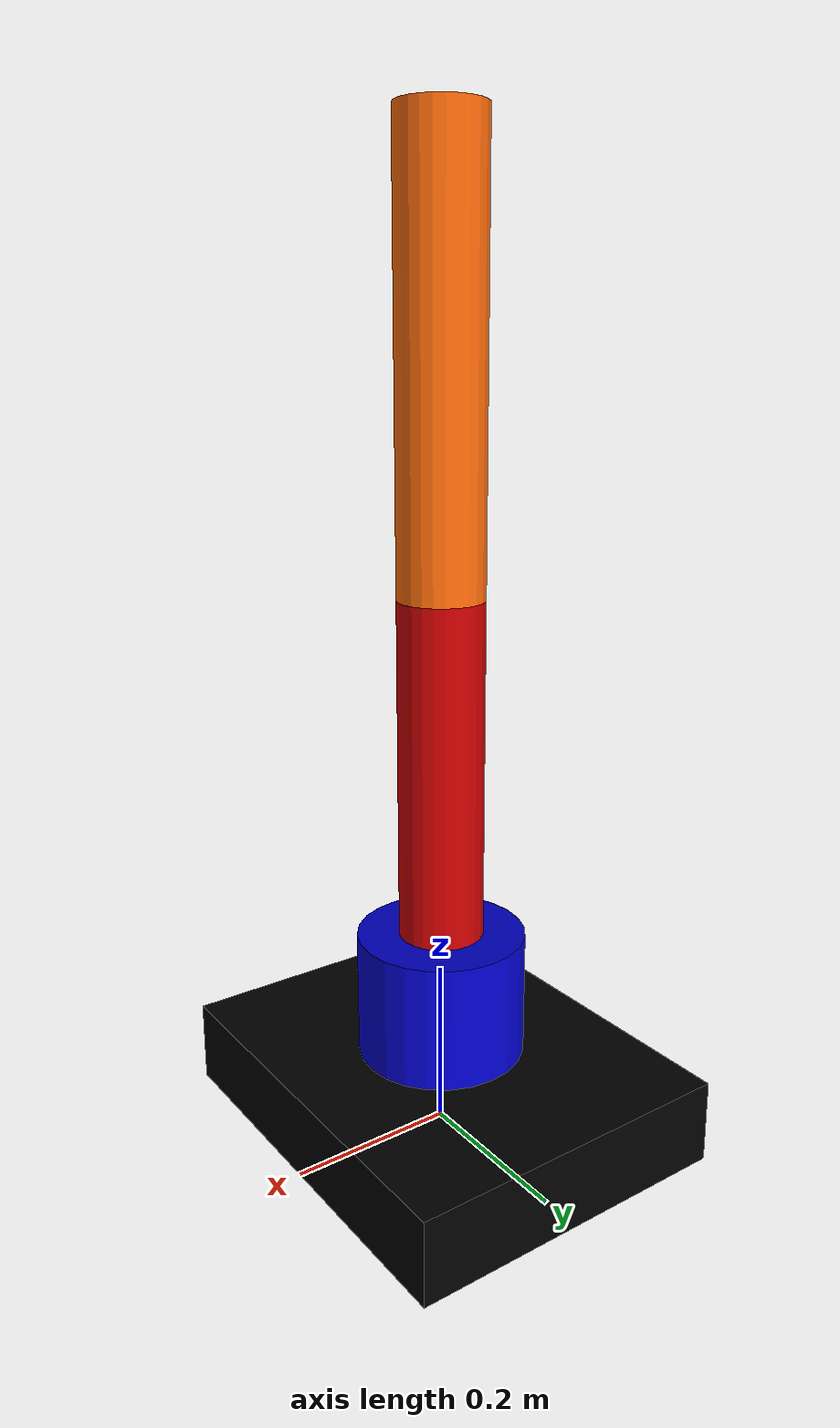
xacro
<?xml version="1.0"?>
<robot name="kai_robot" xmlns:xacro="http://ros.org/wiki/xacro">
  <xacro:property name="pi" value="3.1415" />
  <xacro:property name="base_platform_width" value="0.5" />
  <xacro:property name="base_platform_depth" value="0.4" />
  <xacro:property name="base_platform_height" value="0.1" />
  <xacro:property name="base_platform_mass" value="160" />

  <xacro:property name="base_cylinder_radius" value="0.1" />
  <xacro:property name="base_cylinder_length" value="0.15" />
  <xacro:property name="base_cylinder_mass" value="12.717" />

  <xacro:property name="pole_radius" value="0.05" />
  <xacro:property name="pole_length" value="0.4" />
  <xacro:property name="pole_mass" value="8.482" />

  <xacro:property name="arm_radius" value="0.05" />
  <xacro:property name="arm_length" value="0.5" />
  <xacro:property name="arm_mass" value="10.597" />

  <xacro:include filename="$(find kai_description)/urdf/kai.gazebo" />
  <xacro:include filename="$(find kai_description)/urdf/macros.xacro" />
  <xacro:include filename="$(find kai_description)/urdf/materials.xacro" />
  <xacro:include filename="$(find kai_description)/urdf/geometry.xacro" />

  <!--load ros_control plugin-->
  <gazebo>
    <plugin name="control" filename="libgazebo_ros_control.so"/>
  </gazebo>
</robot>

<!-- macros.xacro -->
<robot name="kai" xmlns:xacro="http://ros.org/wiki/xacro">
  <xacro:macro name="box_inertia" params="mass width depth height">
    <inertial>
      <mass value="${mass}" />
      <inertia ixx="${mass * (height*height + depth*depth)/12}"
               ixy="0" ixz="0"
               iyy="${mass * (width*width + depth*depth)/12}"
               iyz="0"
               izz="${mass * (width*width + height*height)/12}" />
    </inertial>
  </xacro:macro>

  <xacro:macro name="cylinder_end_inertia" params="mass radius length">
    <inertial>
      <mass value="${mass}" />
      <inertia ixx="${mass * (length*length)/3}"
               ixy="0" ixz="0"
               iyy="0"
               iyz="0"
               izz="${mass * (length*length)/3}" />

    </inertial>
  </xacro:macro>
  <xacro:macro name="cylinder_center_inertia" params="mass radius length">
    <inertial>
      <mass value="${mass}" />
      <inertia ixx="${mass * (3*radius*radius + length*length)/12}"
               ixy="0" ixz="0"
               iyy="${mass * (3*radius*radius + length*length)/12}"
               iyz="0"
               izz="${mass * (radius*radius)/2}" />

    </inertial>
  </xacro:macro>
</robot>

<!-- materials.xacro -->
<robot name="kai" xmlns:xacro="http://ros.org/wiki/xacro">
  <!-- RVIZ colors -->
  <material name="black">
    <color rgba="0.0 0.0 0.0 1.0"/>
  </material>

  <material name="blue">
    <color rgba="0.0 0.0 0.8 1.0"/>
  </material>

  <material name="green">
    <color rgba="0.0 0.8 0.0 1.0"/>
  </material>

  <material name="grey">
    <color rgba="0.2 0.2 0.2 1.0"/>
  </material>

  <material name="orange">
    <color rgba="${255/255} ${108/255} ${10/255} 1.0"/>
  </material>

  <material name="brown">
    <color rgba="${222/255} ${207/255} ${195/255} 1.0"/>
  </material>

  <material name="red">
    <color rgba="0.8 0.0 0.0 1.0"/>
  </material>

  <material name="white">
    <color rgba="1.0 1.0 1.0 1.0"/>
  </material>
</robot>

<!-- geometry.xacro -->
<robot name="kai" xmlns:xacro="http://ros.org/wiki/xacro">
  <!--Base platform-->
  <link name="base_platform_link">
    <collision>
      <origin xyz="0 0 ${base_platform_height/2}" rpy="0 0 0" />
      <geometry>
        <box size="${base_platform_depth} ${base_platform_width} ${base_platform_height}" />
      </geometry>
    </collision>

    <visual>
      <origin xyz="0 0 ${base_platform_height/2}" rpy="0 0 0" />
      <geometry>
        <box size="${base_platform_depth} ${base_platform_width} ${base_platform_height}" />
      </geometry>
      <material name="black" />
    </visual>

    <xacro:box_inertia mass="${base_platform_mass}" width="${base_platform_width}"
      depth="${base_platform_depth}" height="${base_platform_height}" />
  </link>

  <!--JOINT Base_fixed-->
  <joint name="base_fixed_joint" type="fixed">
    <parent link="base_platform_link" />
    <child link="base_cylinder_link" />
    <axis xyz="0 0 1"/>
    <origin xyz="0 0 ${base_platform_height}" rpy="0 0 0"/>
  </joint>

  <!--Base Cylinder-->
  <link name="base_cylinder_link">
    <collision>
      <origin xyz="0 0 ${base_cylinder_length/2}" rpy="0 0 0" />
      <geometry>
        <box size="${base_cylinder_radius} ${base_cylinder_radius} ${base_cylinder_length/2}"/>
      </geometry>
    </collision>

    <visual>
      <origin xyz="0 0 ${base_cylinder_length/2}" rpy="0 0 0" />
      <geometry>
        <cylinder length="${base_cylinder_length}" radius="${base_cylinder_radius}"/>
      </geometry>
      <material name="blue" />
    </visual>

    <xacro:cylinder_center_inertia mass="${base_cylinder_mass}" radius="${base_cylinder_radius}" length="${base_cylinder_length}" />

  </link>

  <!--JOINT Base_pole-->
  <joint name="base_pole_joint" type="continuous">
    <parent link="base_cylinder_link" />
    <child link="pole_link" />
    <origin xyz="0 0 ${base_cylinder_length}" rpy="0 0 0" />
    <axis xyz="0 0 1" />
  </joint>

 <!--Pole-->
 <link name="pole_link">
    <collision>
      <origin xyz="0 0 ${pole_length/2}" rpy="0 0 0" />
      <geometry>
        <box size="${pole_radius} ${pole_radius} ${pole_length}" />
      </geometry>
    </collision>

    <visual>
      <origin xyz="0 0 ${pole_length/2}" rpy="0 0 0" />
      <geometry>
        <cylinder length="${pole_length}" radius="${pole_radius}" />
      </geometry>
      <material name="red" />
    </visual>

    <xacro:cylinder_center_inertia mass="${pole_mass}" radius="${pole_radius}" length="${pole_length}" />
  </link>

  <!--JOINT Pole_arm-->
  <joint name="pole_arm_joint" type="revolute">
    <parent link="pole_link"/>
    <child link="arm_link" />
    <origin xyz="0 0 ${pole_length}" rpy="0 0 0" />
    <axis xyz="0 1 0" />
    <limit effort="1000" lower="-2.5" upper="2.5" velocity="0.6" />
  </joint>

  <!--Arm-->
  <link name="arm_link">
     <collision>
       <origin xyz="0 0 ${arm_length/2}" rpy="0 0 0" />
      <geometry>
        <box size="${arm_radius} ${arm_radius} ${arm_length}" />
      </geometry>
    </collision>

    <visual>
      <origin xyz="0 0 ${arm_length/2}" rpy="0 0 0" />
      <geometry>
        <cylinder length="${arm_length}" radius="${arm_radius}" />
      </geometry>
      <material name="orange" />
    </visual>

    <xacro:cylinder_end_inertia mass="${arm_mass}" radius="${arm_radius}" length="${arm_length}" />
  </link>

  <!--Transmissions-->
  <transmission name="tran0">
    <type>transmission_interface/SimpleTransmission</type>
    <joint name="base_pole_joint">
      <hardwareInterface>PositionJointInterface</hardwareInterface>
    </joint>
    <actuator name="motor0">
      <hardwareInterface>PositionJointInterfce</hardwareInterface>
      <mechanicalReduction>1</mechanicalReduction>
    </actuator>
  </transmission>

  <transmission name="tran1">
    <type>transmission_interface/SimpleTransmission</type>
    <joint name="pole_arm_joint">
      <hardwareInterface>PositionJointInterface</hardwareInterface>
    </joint>
    <actuator name="motor1">
      <hardwareInterface>PositionJointInterfce</hardwareInterface>
      <mechanicalReduction>1</mechanicalReduction>
    </actuator>
  </transmission>

</robot>
